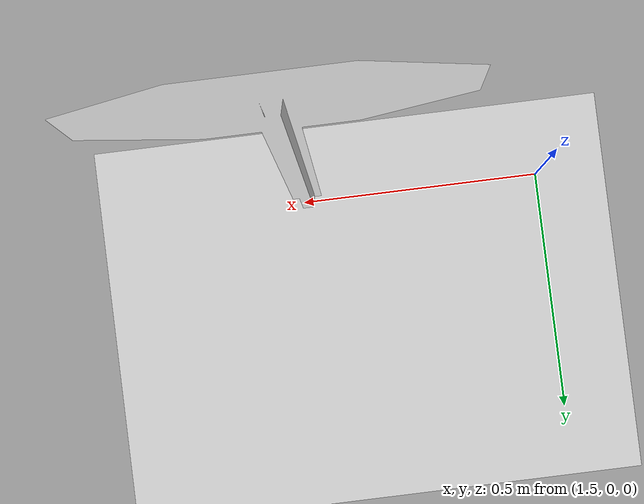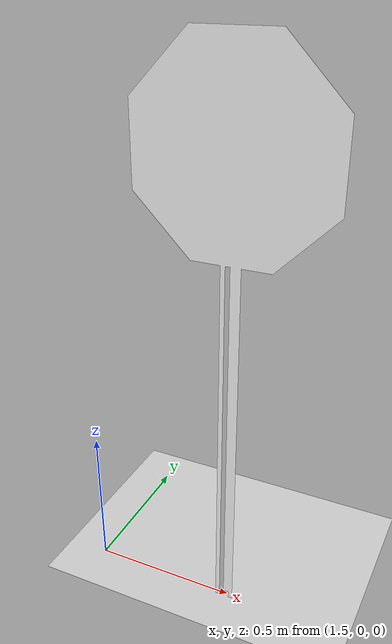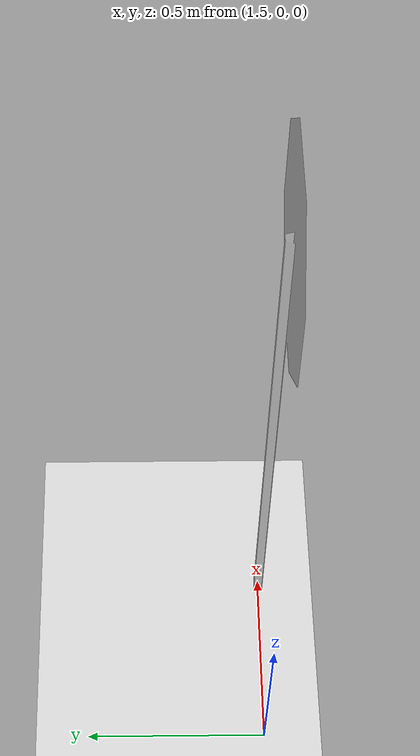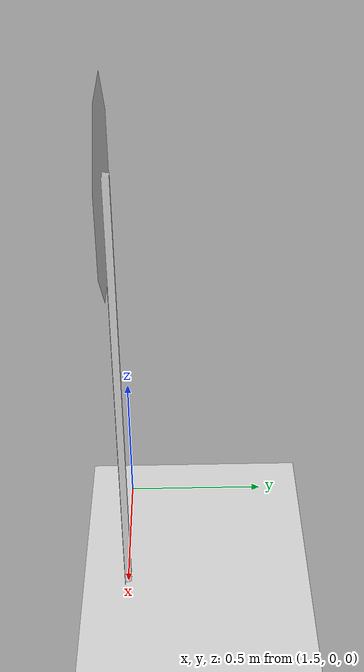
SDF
<sdf version="1.7">
 <world name="default">
  <light name="sun" type="directional">
   <pose>0 0 10 0 -0 0</pose>
   <diffuse>0.8 0.8 0.8 1</diffuse>
   <specular>0.2 0.2 0.2 1</specular>
   <attenuation>
    <range>1000</range>
    <constant>0.9</constant>
    <linear>0.01</linear>
    <quadratic>0.001</quadratic>
   </attenuation>
   <direction>-0.5 0.1 -0.9</direction>
   <spot><inner_angle>0</inner_angle><outer_angle>0</outer_angle><falloff>0</falloff></spot>
  </light>
  <model name="ground_plane">
   <static>1</static>
   <link name="link">
    <collision name="collision">
     <geometry><plane><normal>0 0 1</normal><size>100 100</size></plane></geometry>
     <surface><friction><ode><mu>100</mu><mu2>50</mu2></ode></friction></surface>
    </collision>
    <visual name="visual">
     <cast_shadows>0</cast_shadows>
     <geometry><plane><normal>0 0 1</normal><size>100 100</size></plane></geometry>
     <material>
      <script><uri>file://media/materials/scripts/gazebo.material</uri><name>Gazebo/Grey</name></script>
     </material>
    </visual>
   </link>
  </model>
  <physics type="ode">
   <real_time_update_rate>0</real_time_update_rate>
   <max_step_size>0.001</max_step_size>
   <real_time_factor>1</real_time_factor>
  </physics>
  <model name="target">
   <link name="link">
    <inertial>
     <inertia><ixx>1</ixx><ixy>0</ixy><ixz>0</ixz><iyy>1</iyy><iyz>0</iyz><izz>1</izz></inertia>
     <mass>1</mass>
    </inertial>
    <gravity>0</gravity>
    <visual name="visual">
     <geometry><mesh><uri>model://stop_sign/meshes/stop_sign.dae</uri><scale>1 1 1</scale></mesh></geometry>
     <material>
      <script>
       <uri>model://stop_sign/materials/scripts</uri>
       <uri>model://stop_sign/materials/textures</uri>
       <name>StopSign/Diffuse</name>
      </script>
      <ambient>1 1 1 1</ambient>
      <diffuse>1 1 1 1</diffuse>
      <specular>0 0 0 1</specular>
      <emissive>0 0 0 1</emissive>
      <shader type="vertex"><normal_map>__default__</normal_map></shader>
     </material>
    </visual>
    <collision name="collision">
     <geometry><box><size>1e-06 1e-06 1e-06</size></box></geometry>
     <surface>
      <friction>
       <ode><mu>1</mu><mu2>1</mu2><fdir1>0 0 0</fdir1><slip1>0</slip1><slip2>0</slip2></ode>
       <torsional>
        <coefficient>1</coefficient>
        <patch_radius>0</patch_radius>
        <surface_radius>0</surface_radius>
        <use_patch_radius>1</use_patch_radius>
        <ode><slip>0</slip></ode>
       </torsional>
      </friction>
      <bounce><restitution_coefficient>0</restitution_coefficient><threshold>1e+06</threshold></bounce>
      <contact>
       <collide_without_contact>0</collide_without_contact>
       <collide_without_contact_bitmask>1</collide_without_contact_bitmask>
       <collide_bitmask>1</collide_bitmask>
       <ode>
        <soft_cfm>0</soft_cfm>
        <soft_erp>0.2</soft_erp>
        <kp>1e+13</kp>
        <kd>1</kd>
        <max_vel>0.01</max_vel>
        <min_depth>0</min_depth>
       </ode>
       <bullet>
        <split_impulse>1</split_impulse>
        <split_impulse_penetration_threshold>-0.01</split_impulse_penetration_threshold>
        <soft_cfm>0</soft_cfm>
        <soft_erp>0.2</soft_erp>
        <kp>1e+13</kp>
        <kd>1</kd>
       </bullet>
      </contact>
     </surface>
    </collision>
   </link>
   <static>0</static>
   <pose>1.99262 0 0 0 -0 0</pose>
  </model>
  <gravity>0 0 -9.8</gravity>
  <magnetic_field>6e-06 2.3e-05 -4.2e-05</magnetic_field>
  <atmosphere type="adiabatic"/>
  <scene><ambient>0.4 0.4 0.4 1</ambient><background>0.7 0.7 0.7 1</background><shadows>1</shadows></scene>
  <spherical_coordinates>
   <surface_model>EARTH_WGS84</surface_model>
   <latitude_deg>0</latitude_deg>
   <longitude_deg>0</longitude_deg>
   <elevation>0</elevation>
   <heading_deg>0</heading_deg>
  </spherical_coordinates>
 </world>
</sdf>
